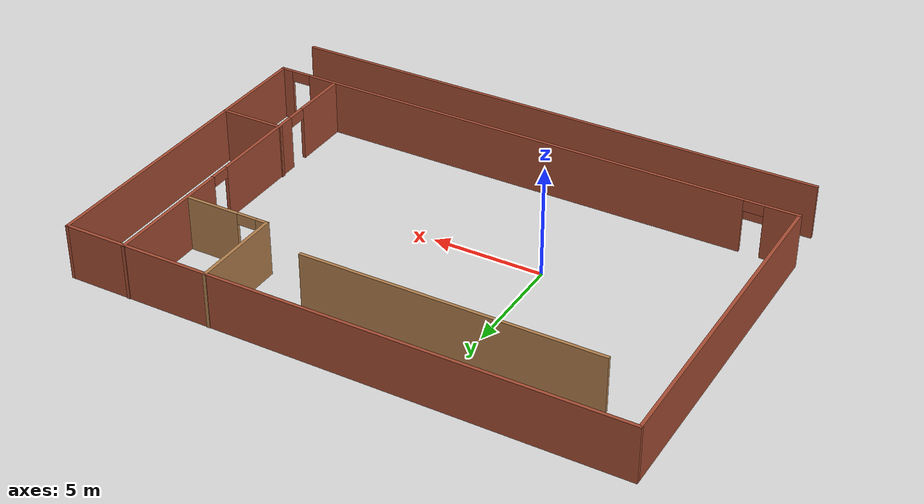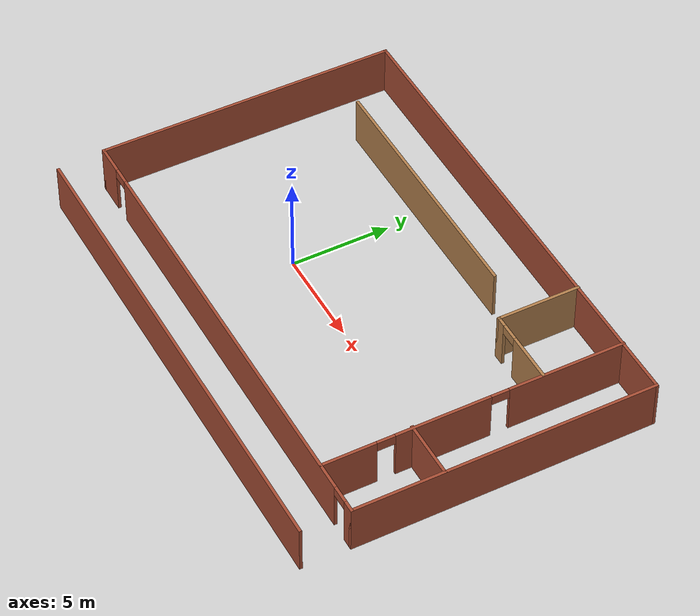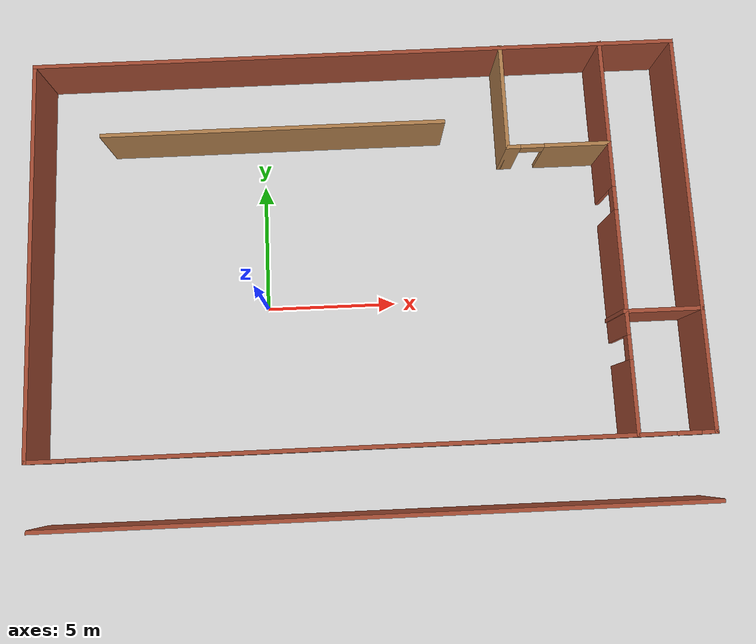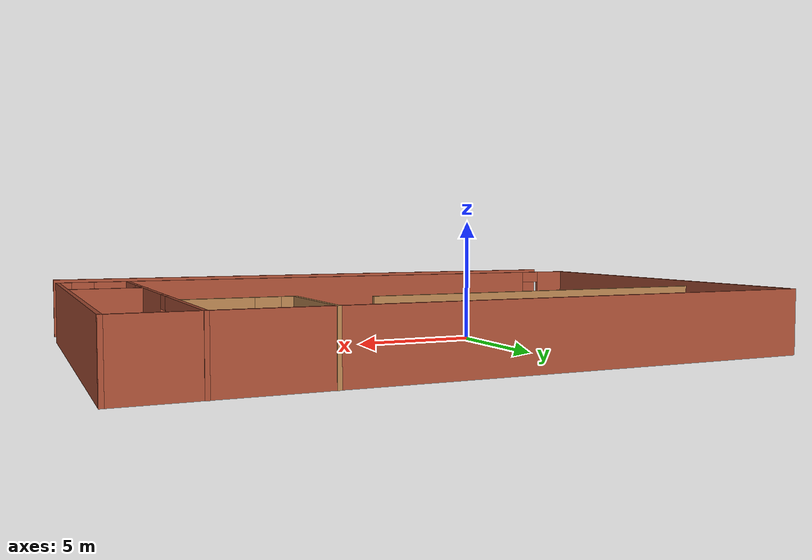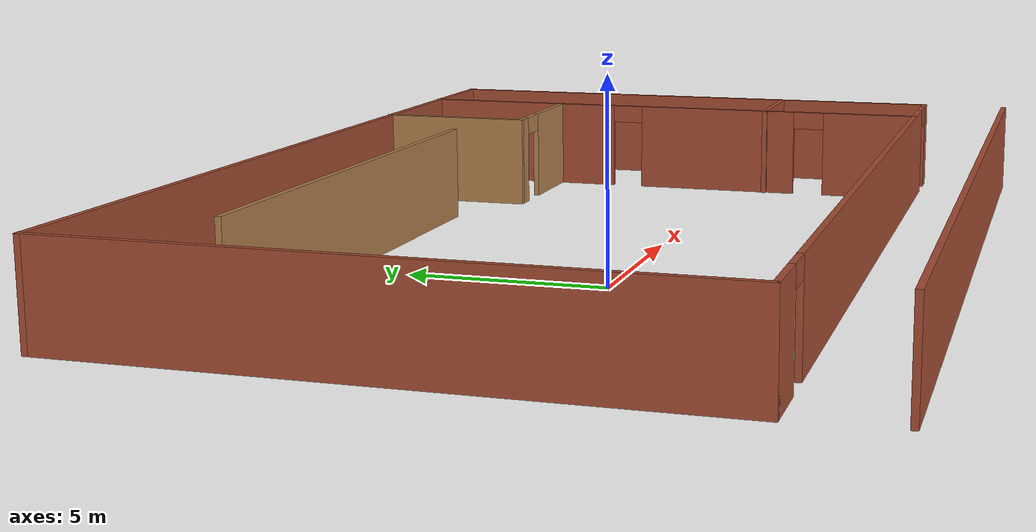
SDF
<?xml version='1.0'?>
<sdf version='1.7'>
  <model name='robotics_lab.world'>
    <pose>3.78652 0.790514 0 0 -0 0</pose>
    <link name='Wall_1'>
      <collision name='Wall_1_Collision'>
        <geometry>
          <box>
            <size>24.75 0.15 2.5</size>
          </box>
        </geometry>
        <pose>0 0 1.25 0 -0 0</pose>
      </collision>
      <visual name='Wall_1_Visual'>
        <pose>0 0 1.25 0 -0 0</pose>
        <geometry>
          <box>
            <size>24.75 0.15 2.5</size>
          </box>
        </geometry>
        <material>
          <script>
            <uri>file://media/materials/scripts/gazebo.material</uri>
            <name>Gazebo/Bricks</name>
          </script>
          <ambient>1 1 1 1</ambient>
        </material>
        <meta>
          <layer>0</layer>
        </meta>
      </visual>
      <pose>0.061202 -8.77446 0 0 -0 0</pose>
    </link>
    <link name='Wall_11'>
      <collision name='Wall_11_Collision'>
        <geometry>
          <box>
            <size>3 0.15 2.5</size>
          </box>
        </geometry>
        <pose>0 0 1.25 0 -0 0</pose>
      </collision>
      <visual name='Wall_11_Visual'>
        <pose>0 0 1.25 0 -0 0</pose>
        <geometry>
          <box>
            <size>3 0.15 2.5</size>
          </box>
        </geometry>
        <material>
          <script>
            <uri>file://media/materials/scripts/gazebo.material</uri>
            <name>Gazebo/Bricks</name>
          </script>
          <ambient>1 1 1 1</ambient>
        </material>
        <meta>
          <layer>0</layer>
        </meta>
      </visual>
      <pose>10.9822 -1.85152 0 0 -0 0</pose>
    </link>
    <link name='Wall_13'>
      <collision name='Wall_13_Collision'>
        <geometry>
          <box>
            <size>4.25 0.15 2.5</size>
          </box>
        </geometry>
        <pose>0 0 1.25 0 -0 0</pose>
      </collision>
      <visual name='Wall_13_Visual'>
        <pose>0 0 1.25 0 -0 0</pose>
        <geometry>
          <box>
            <size>4.25 0.15 2.5</size>
          </box>
        </geometry>
        <material>
          <script>
            <uri>file://media/materials/scripts/gazebo.material</uri>
            <name>Gazebo/Wood</name>
          </script>
          <ambient>1 1 1 1</ambient>
        </material>
        <meta>
          <layer>0</layer>
        </meta>
      </visual>
      <pose>5.72266 6.72246 0 0 -0 -1.5708</pose>
    </link>
    <link name='Wall_14'>
      <pose>7.64766 4.67246 0 0 -0 0</pose>
      <visual name='Wall_14_Visual_0'>
        <pose>-1.71259 0 1.25 0 -0 0</pose>
        <geometry>
          <box>
            <size>0.574826 0.15 2.5</size>
          </box>
        </geometry>
        <material>
          <script>
            <uri>file://media/materials/scripts/gazebo.material</uri>
            <name>Gazebo/Wood</name>
          </script>
          <ambient>1 1 1 1</ambient>
        </material>
        <meta>
          <layer>0</layer>
        </meta>
      </visual>
      <collision name='Wall_14_Collision_0'>
        <geometry>
          <box>
            <size>0.574826 0.15 2.5</size>
          </box>
        </geometry>
        <pose>-1.71259 0 1.25 0 -0 0</pose>
      </collision>
      <visual name='Wall_14_Visual_1'>
        <pose>0.737413 0 1.25 0 -0 0</pose>
        <geometry>
          <box>
            <size>2.52517 0.15 2.5</size>
          </box>
        </geometry>
        <material>
          <script>
            <uri>file://media/materials/scripts/gazebo.material</uri>
            <name>Gazebo/Wood</name>
          </script>
          <ambient>1 1 1 1</ambient>
        </material>
        <meta>
          <layer>0</layer>
        </meta>
      </visual>
      <collision name='Wall_14_Collision_1'>
        <geometry>
          <box>
            <size>2.52517 0.15 2.5</size>
          </box>
        </geometry>
        <pose>0.737413 0 1.25 0 -0 0</pose>
      </collision>
      <visual name='Wall_14_Visual_2'>
        <pose>-0.975174 0 2.25 0 -0 0</pose>
        <geometry>
          <box>
            <size>0.9 0.15 0.5</size>
          </box>
        </geometry>
        <material>
          <script>
            <uri>file://media/materials/scripts/gazebo.material</uri>
            <name>Gazebo/Wood</name>
          </script>
          <ambient>1 1 1 1</ambient>
        </material>
        <meta>
          <layer>0</layer>
        </meta>
      </visual>
      <collision name='Wall_14_Collision_2'>
        <geometry>
          <box>
            <size>0.9 0.15 0.5</size>
          </box>
        </geometry>
        <pose>-0.975174 0 2.25 0 -0 0</pose>
      </collision>
    </link>
    <link name='Wall_16'>
      <collision name='Wall_16_Collision'>
        <geometry>
          <box>
            <size>13.25 0.15 2.5</size>
          </box>
        </geometry>
        <pose>0 0 1.25 0 -0 0</pose>
      </collision>
      <visual name='Wall_16_Visual'>
        <pose>0 0 1.25 0 -0 0</pose>
        <geometry>
          <box>
            <size>13.25 0.15 2.5</size>
          </box>
        </geometry>
        <material>
          <script>
            <uri>file://media/materials/scripts/gazebo.material</uri>
            <name>Gazebo/Wood</name>
          </script>
          <ambient>1 1 1 1</ambient>
        </material>
        <meta>
          <layer>0</layer>
        </meta>
      </visual>
      <pose>-3.24117 5.81745 0 0 -0 0</pose>
    </link>
    <link name='Wall_4'>
      <pose>1e-06 -6.35384 0 0 -0 0</pose>
      <visual name='Wall_4_Visual_0'>
        <pose>-11.7224 0 1.25 0 -0 0</pose>
        <geometry>
          <box>
            <size>1.55525 0.15 2.5</size>
          </box>
        </geometry>
        <material>
          <script>
            <uri>file://media/materials/scripts/gazebo.material</uri>
            <name>Gazebo/Bricks</name>
          </script>
          <ambient>1 1 1 1</ambient>
        </material>
        <meta>
          <layer>0</layer>
        </meta>
      </visual>
      <collision name='Wall_4_Collision_0'>
        <geometry>
          <box>
            <size>1.55525 0.15 2.5</size>
          </box>
        </geometry>
        <pose>-11.7224 0 1.25 0 -0 0</pose>
      </collision>
      <visual name='Wall_4_Visual_1'>
        <pose>0.467707 0 1.25 0 -0 0</pose>
        <geometry>
          <box>
            <size>21.0249 0.15 2.5</size>
          </box>
        </geometry>
        <material>
          <script>
            <uri>file://media/materials/scripts/gazebo.material</uri>
            <name>Gazebo/Bricks</name>
          </script>
          <ambient>1 1 1 1</ambient>
        </material>
        <meta>
          <layer>0</layer>
        </meta>
      </visual>
      <collision name='Wall_4_Collision_1'>
        <geometry>
          <box>
            <size>21.0249 0.15 2.5</size>
          </box>
        </geometry>
        <pose>0.467707 0 1.25 0 -0 0</pose>
      </collision>
      <visual name='Wall_4_Visual_2'>
        <pose>12.1901 0 1.25 0 -0 0</pose>
        <geometry>
          <box>
            <size>0.61984 0.15 2.5</size>
          </box>
        </geometry>
        <material>
          <script>
            <uri>file://media/materials/scripts/gazebo.material</uri>
            <name>Gazebo/Bricks</name>
          </script>
          <ambient>1 1 1 1</ambient>
        </material>
        <meta>
          <layer>0</layer>
        </meta>
      </visual>
      <collision name='Wall_4_Collision_2'>
        <geometry>
          <box>
            <size>0.61984 0.15 2.5</size>
          </box>
        </geometry>
        <pose>12.1901 0 1.25 0 -0 0</pose>
      </collision>
      <visual name='Wall_4_Visual_3'>
        <pose>-10.4947 0 2.25 0 -0 0</pose>
        <geometry>
          <box>
            <size>0.9 0.15 0.5</size>
          </box>
        </geometry>
        <material>
          <script>
            <uri>file://media/materials/scripts/gazebo.material</uri>
            <name>Gazebo/Bricks</name>
          </script>
          <ambient>1 1 1 1</ambient>
        </material>
        <meta>
          <layer>0</layer>
        </meta>
      </visual>
      <collision name='Wall_4_Collision_3'>
        <geometry>
          <box>
            <size>0.9 0.15 0.5</size>
          </box>
        </geometry>
        <pose>-10.4947 0 2.25 0 -0 0</pose>
      </collision>
      <visual name='Wall_4_Visual_4'>
        <pose>11.4302 0 2.25 0 -0 0</pose>
        <geometry>
          <box>
            <size>0.9 0.15 0.5</size>
          </box>
        </geometry>
        <material>
          <script>
            <uri>file://media/materials/scripts/gazebo.material</uri>
            <name>Gazebo/Bricks</name>
          </script>
          <ambient>1 1 1 1</ambient>
        </material>
        <meta>
          <layer>0</layer>
        </meta>
      </visual>
      <collision name='Wall_4_Collision_4'>
        <geometry>
          <box>
            <size>0.9 0.15 0.5</size>
          </box>
        </geometry>
        <pose>11.4302 0 2.25 0 -0 0</pose>
      </collision>
    </link>
    <link name='Wall_5'>
      <collision name='Wall_5_Collision'>
        <geometry>
          <box>
            <size>15.25 0.15 2.5</size>
          </box>
        </geometry>
        <pose>0 0 1.25 0 -0 0</pose>
      </collision>
      <visual name='Wall_5_Visual'>
        <pose>0 0 1.25 0 -0 0</pose>
        <geometry>
          <box>
            <size>15.25 0.15 2.5</size>
          </box>
        </geometry>
        <material>
          <script>
            <uri>file://media/materials/scripts/gazebo.material</uri>
            <name>Gazebo/Bricks</name>
          </script>
          <ambient>1 1 1 1</ambient>
        </material>
        <meta>
          <layer>0</layer>
        </meta>
      </visual>
      <pose>12.425 1.19616 0 0 -0 1.5708</pose>
    </link>
    <link name='Wall_6'>
      <collision name='Wall_6_Collision'>
        <geometry>
          <box>
            <size>25 0.15 2.5</size>
          </box>
        </geometry>
        <pose>0 0 1.25 0 -0 0</pose>
      </collision>
      <visual name='Wall_6_Visual'>
        <pose>0 0 1.25 0 -0 0</pose>
        <geometry>
          <box>
            <size>25 0.15 2.5</size>
          </box>
        </geometry>
        <material>
          <script>
            <uri>file://media/materials/scripts/gazebo.material</uri>
            <name>Gazebo/Bricks</name>
          </script>
          <ambient>1 1 1 1</ambient>
        </material>
        <meta>
          <layer>0</layer>
        </meta>
      </visual>
      <pose>1e-06 8.74616 0 0 -0 3.14159</pose>
    </link>
    <link name='Wall_7'>
      <collision name='Wall_7_Collision'>
        <geometry>
          <box>
            <size>15.25 0.15 2.5</size>
          </box>
        </geometry>
        <pose>0 0 1.25 0 -0 0</pose>
      </collision>
      <visual name='Wall_7_Visual'>
        <pose>0 0 1.25 0 -0 0</pose>
        <geometry>
          <box>
            <size>15.25 0.15 2.5</size>
          </box>
        </geometry>
        <material>
          <script>
            <uri>file://media/materials/scripts/gazebo.material</uri>
            <name>Gazebo/Bricks</name>
          </script>
          <ambient>1 1 1 1</ambient>
        </material>
        <meta>
          <layer>0</layer>
        </meta>
      </visual>
      <pose>-12.425 1.19616 0 0 -0 -1.5708</pose>
    </link>
    <link name='Wall_9'>
      <pose>9.61573 1.22446 0 0 -0 -1.5708</pose>
      <visual name='Wall_9_Visual_0'>
        <pose>-4.663 0 1.25 0 -0 0</pose>
        <geometry>
          <box>
            <size>5.92399 0.15 2.5</size>
          </box>
        </geometry>
        <material>
          <script>
            <uri>file://media/materials/scripts/gazebo.material</uri>
            <name>Gazebo/Bricks</name>
          </script>
          <ambient>1 1 1 1</ambient>
        </material>
        <meta>
          <layer>0</layer>
        </meta>
      </visual>
      <collision name='Wall_9_Collision_0'>
        <geometry>
          <box>
            <size>5.92399 0.15 2.5</size>
          </box>
        </geometry>
        <pose>-4.663 0 1.25 0 -0 0</pose>
      </collision>
      <visual name='Wall_9_Visual_1'>
        <pose>1.58089 0 1.25 0 -0 0</pose>
        <geometry>
          <box>
            <size>4.76378 0.15 2.5</size>
          </box>
        </geometry>
        <material>
          <script>
            <uri>file://media/materials/scripts/gazebo.material</uri>
            <name>Gazebo/Bricks</name>
          </script>
          <ambient>1 1 1 1</ambient>
        </material>
        <meta>
          <layer>0</layer>
        </meta>
      </visual>
      <collision name='Wall_9_Collision_1'>
        <geometry>
          <box>
            <size>4.76378 0.15 2.5</size>
          </box>
        </geometry>
        <pose>1.58089 0 1.25 0 -0 0</pose>
      </collision>
      <visual name='Wall_9_Visual_2'>
        <pose>6.24389 0 1.25 0 -0 0</pose>
        <geometry>
          <box>
            <size>2.76222 0.15 2.5</size>
          </box>
        </geometry>
        <material>
          <script>
            <uri>file://media/materials/scripts/gazebo.material</uri>
            <name>Gazebo/Bricks</name>
          </script>
          <ambient>1 1 1 1</ambient>
        </material>
        <meta>
          <layer>0</layer>
        </meta>
      </visual>
      <collision name='Wall_9_Collision_2'>
        <geometry>
          <box>
            <size>2.76222 0.15 2.5</size>
          </box>
        </geometry>
        <pose>6.24389 0 1.25 0 -0 0</pose>
      </collision>
      <visual name='Wall_9_Visual_3'>
        <pose>-1.25101 0 2.25 0 -0 0</pose>
        <geometry>
          <box>
            <size>0.9 0.15 0.5</size>
          </box>
        </geometry>
        <material>
          <script>
            <uri>file://media/materials/scripts/gazebo.material</uri>
            <name>Gazebo/Bricks</name>
          </script>
          <ambient>1 1 1 1</ambient>
        </material>
        <meta>
          <layer>0</layer>
        </meta>
      </visual>
      <collision name='Wall_9_Collision_3'>
        <geometry>
          <box>
            <size>0.9 0.15 0.5</size>
          </box>
        </geometry>
        <pose>-1.25101 0 2.25 0 -0 0</pose>
      </collision>
      <visual name='Wall_9_Visual_4'>
        <pose>4.41277 0 2.25 0 -0 0</pose>
        <geometry>
          <box>
            <size>0.9 0.15 0.5</size>
          </box>
        </geometry>
        <material>
          <script>
            <uri>file://media/materials/scripts/gazebo.material</uri>
            <name>Gazebo/Bricks</name>
          </script>
          <ambient>1 1 1 1</ambient>
        </material>
        <meta>
          <layer>0</layer>
        </meta>
      </visual>
      <collision name='Wall_9_Collision_4'>
        <geometry>
          <box>
            <size>0.9 0.15 0.5</size>
          </box>
        </geometry>
        <pose>4.41277 0 2.25 0 -0 0</pose>
      </collision>
    </link>
    <static>1</static>
  </model>
</sdf>
